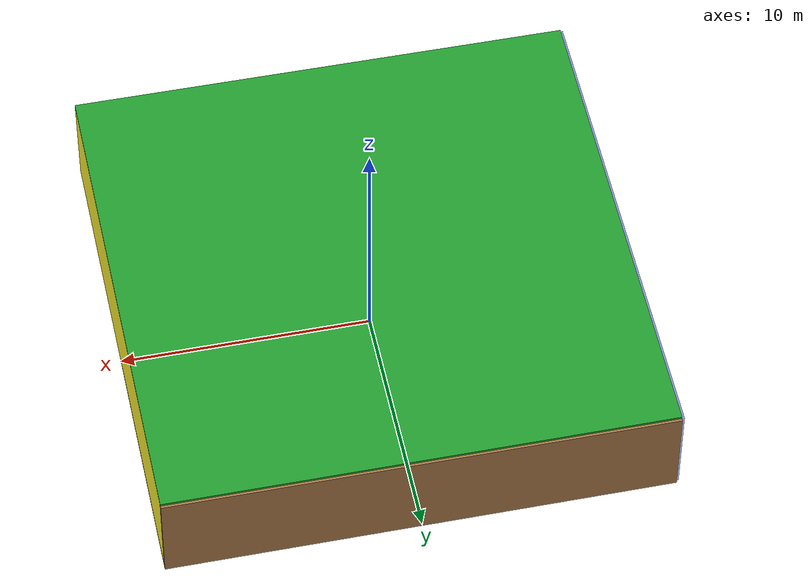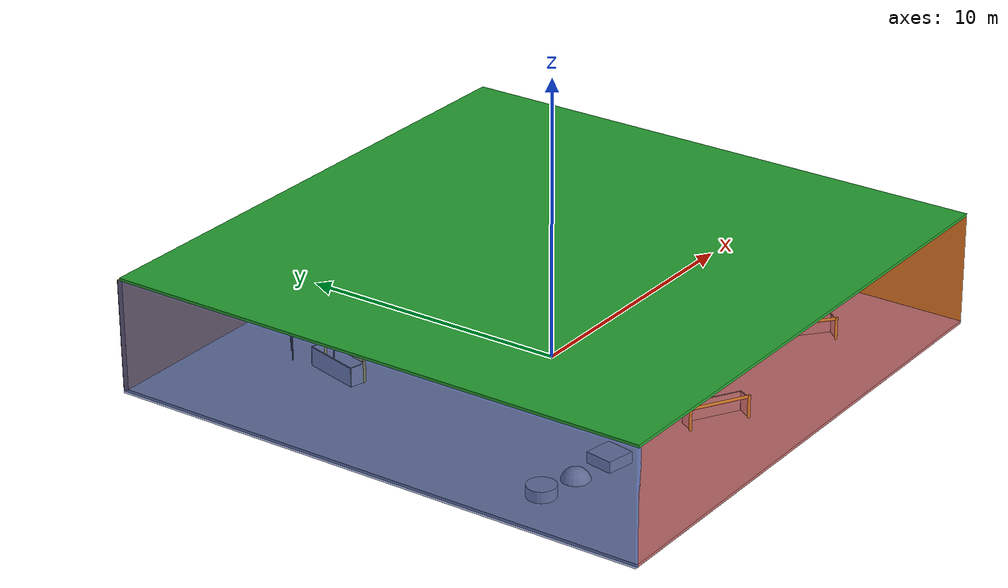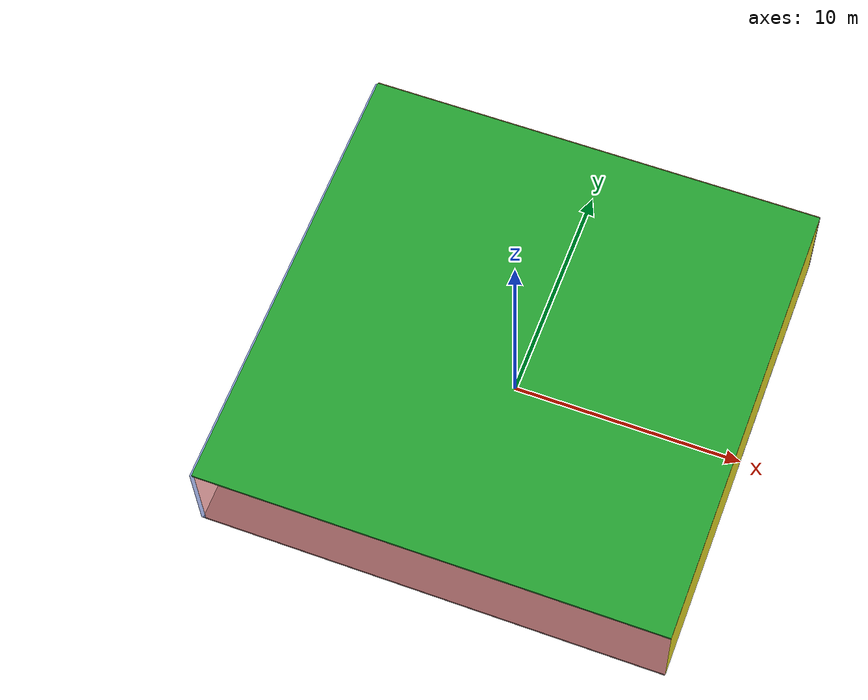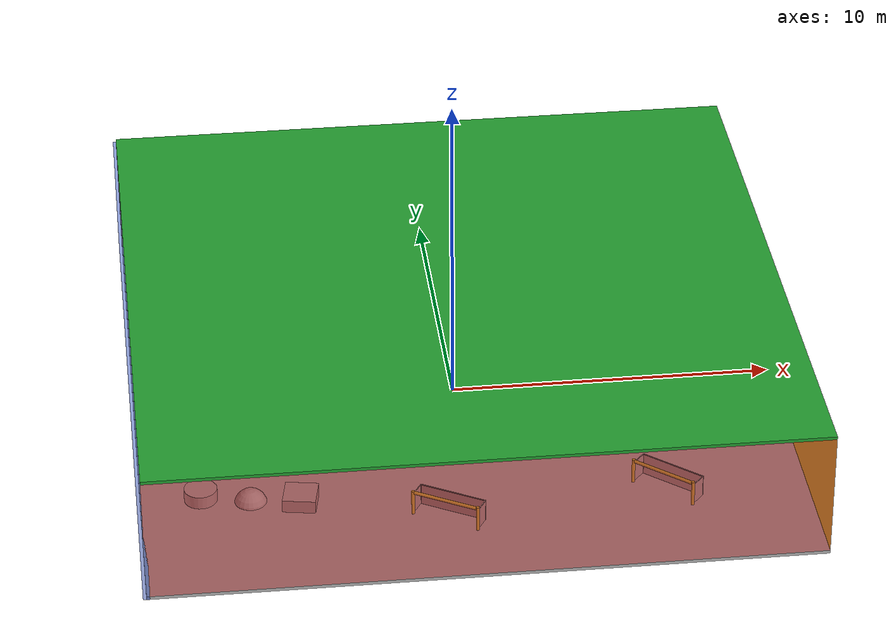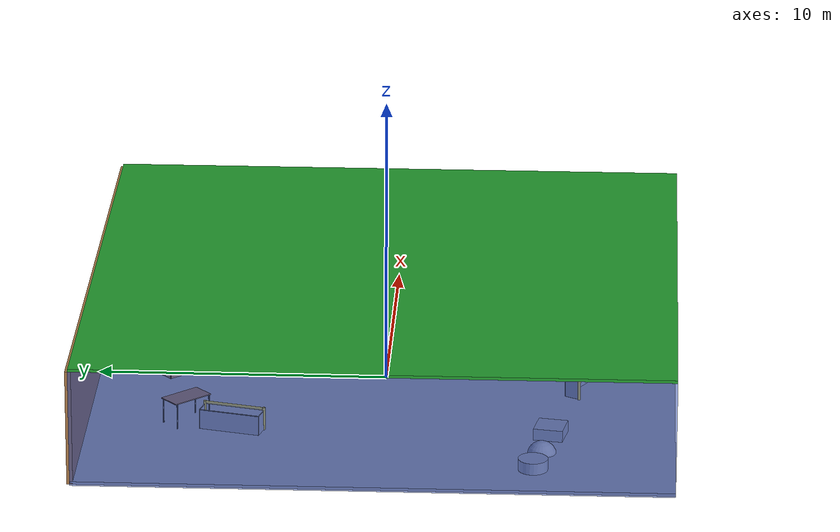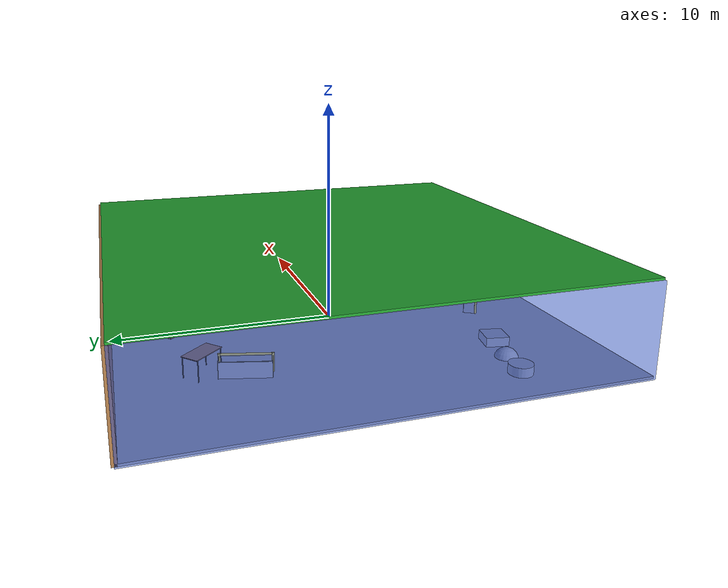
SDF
<sdf version="1.4">
 <world name="default">
  <physics type="ode">
   <max_step_size>0.001</max_step_size>
   <real_time_factor>1</real_time_factor>
   <real_time_update_rate>1000</real_time_update_rate>
   <gravity>0 0 -9.8</gravity>
  </physics>
  <scene><ambient>0.4 0.4 0.4 1</ambient><background>0.7 0.7 0.7 1</background><shadows>1</shadows></scene>
  <model name="Surrounding">
   <static>1</static>
   <link name="Ceiling">
    <collision name="Ceiling_Collision"><geometry><box><size>20 20 0.1</size></box></geometry></collision>
    <visual name="Ceiling_Visual">
     <geometry><box><size>20 20 0.1</size></box></geometry>
     <material>
      <script><uri>file://media/materials/scripts/gazebo.material</uri><name>Gazebo/GreenGlow</name></script>
     </material>
    </visual>
    <pose>0 0 4.05 0 0 0</pose>
   </link>
   <link name="Wall_South">
    <collision name="Wall_South_Collision">
     <geometry><box><size>20 0 4</size></box></geometry>
     <pose>0 0 2 0 -0 0</pose>
    </collision>
    <visual name="Wall_South_Visual">
     <pose>0 0 2 0 -0 0</pose>
     <geometry><box><size>20 0 4</size></box></geometry>
     <material>
      <script><uri>file://media/materials/scripts/gazebo.material</uri><name>Gazebo/RedTransparent</name></script>
     </material>
    </visual>
    <velocity_decay><linear>0</linear><angular>0</angular></velocity_decay>
    <pose>0 -10 0 0 -0 0</pose>
   </link>
   <link name="Wall_East">
    <collision name="Wall_21_Collision">
     <geometry><box><size>20 0 4</size></box></geometry>
     <pose>0 0 2 0 -0 0</pose>
    </collision>
    <visual name="Wall_21_Visual">
     <pose>0 0 2 0 -0 0</pose>
     <geometry><box><size>20 0 4</size></box></geometry>
     <material>
      <script><uri>file://media/materials/scripts/gazebo.material</uri><name>Gazebo/YellowGlow</name></script>
     </material>
    </visual>
    <velocity_decay><linear>0</linear><angular>0</angular></velocity_decay>
    <pose>10 0 0 0 -0 1.5708</pose>
   </link>
   <link name="Wall_North">
    <collision name="Wall_22_Collision">
     <geometry><box><size>20 0.2 4</size></box></geometry>
     <pose>0 0 2 0 -0 0</pose>
    </collision>
    <visual name="Wall_22_Visual">
     <pose>0 0 2 0 -0 0</pose>
     <geometry><box><size>20 0.2 4</size></box></geometry>
     <material>
      <script><uri>file://media/materials/scripts/gazebo.material</uri><name>Gazebo/WoodPallet</name></script>
     </material>
    </visual>
    <velocity_decay><linear>0</linear><angular>0</angular></velocity_decay>
    <pose>0 10 0 0 -0 0</pose>
   </link>
   <link name="Wall_West">
    <collision name="Wall_23_Collision">
     <geometry><box><size>20 0.2 4</size></box></geometry>
     <pose>0 0 2 0 -0 0</pose>
    </collision>
    <visual name="Wall_23_Visual">
     <pose>0 0 2 0 -0 0</pose>
     <geometry><box><size>20 0.2 4</size></box></geometry>
     <material>
      <script><uri>file://media/materials/scripts/gazebo.material</uri><name>Gazebo/BlueTransparent</name></script>
     </material>
    </visual>
    <velocity_decay><linear>0</linear><angular>0</angular></velocity_decay>
    <pose>-10 0 0 0 0 -1.5708</pose>
   </link>
   <link name="Ground_link">
    <collision name="collision">
     <pose>0 0 .05 0 -0 0</pose>
     <geometry><box><size>20 20 0.1</size></box></geometry>
    </collision>
    <visual name="visual">
     <pose>0 0 .05 0 -0 0</pose>
     <geometry><box><size>20 20 0.1</size></box></geometry>
     <material>
      <script><uri>file://media/materials/scripts/gazebo.material</uri><name>Gazebo/CloudySky</name></script>
     </material>
    </visual>
   </link>
   <static>1</static>
  </model>
  <spherical_coordinates>
   <surface_model>EARTH_WGS84</surface_model>
   <latitude_deg>0</latitude_deg>
   <longitude_deg>0</longitude_deg>
   <elevation>0</elevation>
   <heading_deg>0</heading_deg>
  </spherical_coordinates>
  <light name="lightball_0" type="diffuse">
   <diffuse>0.8 0.8 0.8 1</diffuse>
   <specular>0.2 0.2 0.2 1</specular>
   <attenuation>
    <range>100</range>
    <constant>0.7</constant>
    <linear>0.01</linear>
    <quadratic>0.001</quadratic>
   </attenuation>
   <direction>-0.5 0.1 -0.9</direction>
   <pose>0.356109296053 -6.91366480971 0.703805316898 0 0 0</pose>
  </light>
  <light name="lightball_1" type="diffuse">
   <diffuse>0.8 0.8 0.8 1</diffuse>
   <specular>0.2 0.2 0.2 1</specular>
   <attenuation>
    <range>100</range>
    <constant>0.7</constant>
    <linear>0.01</linear>
    <quadratic>0.001</quadratic>
   </attenuation>
   <direction>-0.5 0.1 -0.9</direction>
   <pose>-3.60714688581 6.65449277705 3.21496017347 0 0 0</pose>
  </light>
  <light name="lightball_2" type="diffuse">
   <diffuse>0.8 0.8 0.8 1</diffuse>
   <specular>0.2 0.2 0.2 1</specular>
   <attenuation>
    <range>100</range>
    <constant>0.7</constant>
    <linear>0.01</linear>
    <quadratic>0.001</quadratic>
   </attenuation>
   <direction>-0.5 0.1 -0.9</direction>
   <pose>-6.23087772382 -1.26982757401 2.62976999111 0 0 0</pose>
  </light>
  <light name="lightball_3" type="diffuse">
   <diffuse>0.8 0.8 0.8 1</diffuse>
   <specular>0.2 0.2 0.2 1</specular>
   <attenuation>
    <range>100</range>
    <constant>0.7</constant>
    <linear>0.01</linear>
    <quadratic>0.001</quadratic>
   </attenuation>
   <direction>-0.5 0.1 -0.9</direction>
   <pose>-8.24452565727 7.00280367246 1.97281453646 0 0 0</pose>
  </light>
  <light name="lightball_4" type="diffuse">
   <diffuse>0.8 0.8 0.8 1</diffuse>
   <specular>0.2 0.2 0.2 1</specular>
   <attenuation>
    <range>100</range>
    <constant>0.7</constant>
    <linear>0.01</linear>
    <quadratic>0.001</quadratic>
   </attenuation>
   <direction>-0.5 0.1 -0.9</direction>
   <pose>6.41094202256 0.719501401737 3.63900580162 0 0 0</pose>
  </light>
  <light name="lightball_5" type="diffuse">
   <diffuse>0.8 0.8 0.8 1</diffuse>
   <specular>0.2 0.2 0.2 1</specular>
   <attenuation>
    <range>100</range>
    <constant>0.7</constant>
    <linear>0.01</linear>
    <quadratic>0.001</quadratic>
   </attenuation>
   <direction>-0.5 0.1 -0.9</direction>
   <pose>4.83976643545 -1.57454190787 0.979009251018 0 0 0</pose>
  </light>
  <light name="lightball_6" type="diffuse">
   <diffuse>0.8 0.8 0.8 1</diffuse>
   <specular>0.2 0.2 0.2 1</specular>
   <attenuation>
    <range>100</range>
    <constant>0.7</constant>
    <linear>0.01</linear>
    <quadratic>0.001</quadratic>
   </attenuation>
   <direction>-0.5 0.1 -0.9</direction>
   <pose>7.27244805467 -6.03602611273 1.25622653196 0 0 0</pose>
  </light>
  <light name="lightball_7" type="diffuse">
   <diffuse>0.8 0.8 0.8 1</diffuse>
   <specular>0.2 0.2 0.2 1</specular>
   <attenuation>
    <range>100</range>
    <constant>0.7</constant>
    <linear>0.01</linear>
    <quadratic>0.001</quadratic>
   </attenuation>
   <direction>-0.5 0.1 -0.9</direction>
   <pose>0.417457826085 -3.65545470899 0.70395250306 0 0 0</pose>
  </light>
  <light name="lightball_8" type="diffuse">
   <diffuse>0.8 0.8 0.8 1</diffuse>
   <specular>0.2 0.2 0.2 1</specular>
   <attenuation>
    <range>100</range>
    <constant>0.7</constant>
    <linear>0.01</linear>
    <quadratic>0.001</quadratic>
   </attenuation>
   <direction>-0.5 0.1 -0.9</direction>
   <pose>-1.2152143709 -3.06609102083 3.41015951877 0 0 0</pose>
  </light>
  <light name="lightball_9" type="diffuse">
   <diffuse>0.8 0.8 0.8 1</diffuse>
   <specular>0.2 0.2 0.2 1</specular>
   <attenuation>
    <range>100</range>
    <constant>0.7</constant>
    <linear>0.01</linear>
    <quadratic>0.001</quadratic>
   </attenuation>
   <direction>-0.5 0.1 -0.9</direction>
   <pose>4.80928050401 5.89877229801 1.31614242122 0 0 0</pose>
  </light>
  <include>
   <uri>model://textured_shapes</uri>
   <pose>-6.70419239069 -5.53085637178 0 0 0 1.39333505325</pose>
  </include>
  <include>
   <uri>model://robocup_3Dsim_goal</uri>
   <pose>-4.91278080694 4.91318455695 0 0 0 2.88872980431</pose>
  </include>
  <include><uri>model://table</uri><pose>-4.53559143307 6.57490370744 0 0 0 2.31175653778</pose></include>
  <include>
   <uri>model://robocup_3Dsim_goal</uri>
   <pose>-1.03778506482 -7.23631424058 0 0 0 1.04110611391</pose>
  </include>
  <include><uri>model://cabinet</uri><pose>-0.428942321099 7.41068650335 0 0 0 2.29755260633</pose></include>
  <include>
   <uri>model://robocup_3Dsim_goal</uri>
   <pose>5.59736586203 -6.50403890781 0 0 0 0.851231521505</pose>
  </include>
  <include>
   <uri>model://construction_cone</uri>
   <pose>3.41232937458 6.9524499684 0 0 0 2.03443081624</pose>
  </include>
 </world>
</sdf>

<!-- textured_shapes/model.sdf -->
<sdf version="1.6">
  <model name="textured_shapes">
    <pose>0 0 0.5 0 0 0</pose>
    <link name="box">
      <pose>0 -1.5 0 0 0 0</pose>
      <collision name="collision">
        <geometry>
          <box>
            <size>1 1 1</size>
          </box>
        </geometry>
      </collision>
      <visual name="visual">
        <geometry>
          <box>
            <size>1 1 1</size>
          </box>
        </geometry>
        <material>
          <script>
            <uri>model://../model_source/models/textured_shapes/materials/scripts</uri>
            <uri>model://../model_source/models/textured_shapes/materials/textures</uri>
            <name>TexturedShape/Squares</name>
          </script>
        </material>
      </visual>
    </link>
    <link name="sphere">
      <collision name="collision">
        <geometry>
          <sphere>
            <radius>0.5</radius>
          </sphere>
        </geometry>
      </collision>
      <visual name="visual">
        <geometry>
          <sphere>
            <radius>0.5</radius>
          </sphere>
        </geometry>
        <material>
          <script>
            <uri>model://../model_source/models/textured_shapes/materials/scripts</uri>
            <uri>model://../model_source/models/textured_shapes/materials/textures</uri>
            <name>TexturedShape/Squares</name>
          </script>
        </material>
      </visual>
    </link>
    <link name="cylinder">
      <pose>0 1.5 0 0 0 0</pose>
      <collision name="collision">
        <geometry>
          <cylinder>
            <radius>0.5</radius>
            <length>1</length>
          </cylinder>
        </geometry>
      </collision>
      <visual name="visual">
        <geometry>
          <cylinder>
            <radius>0.5</radius>
            <length>1</length>
          </cylinder>
        </geometry>
        <material>
          <script>
            <uri>model://../model_source/models/textured_shapes/materials/scripts</uri>
            <uri>model://../model_source/models/textured_shapes/materials/textures</uri>
            <name>TexturedShape/Squares</name>
          </script>
        </material>
      </visual>
    </link>
  </model>
</sdf>

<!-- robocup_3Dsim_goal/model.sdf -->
<sdf version="1.5">
  <model name="robocup_3d_goal">
    <static>true</static>
    <link name="left_post">
      <pose>0 1.05 0.45 0 0 0</pose>
      <collision name="collision">
        <geometry>
          <cylinder>
            <radius>0.05</radius>
            <length>0.9</length>
          </cylinder>
        </geometry>
      </collision>
      <visual name="visual">
        <geometry>
          <cylinder>
            <radius>0.05</radius>
            <length>0.9</length>
          </cylinder>
        </geometry>
        <material>
          <script>
            <uri>file://media/materials/scripts/gazebo.material</uri>
            <name>Gazebo/ZincYellow</name>
          </script>
        </material>
      </visual>
    </link>
    <link name="left_support_horiz_lower">
      <pose>0.30 1.05 0.01 0 0 0</pose>
      <collision name="collision">
        <geometry>
          <box>
            <size>0.50 0.02 0.02</size>
          </box>
        </geometry>
      </collision>
      <visual name="visual">
        <geometry>
          <box>
            <size>0.50 0.02 0.02</size>
          </box>
        </geometry>
        <material>
          <script>
            <uri>file://media/materials/scripts/gazebo.material</uri>
            <name>Gazebo/White</name>
          </script>
        </material>
      </visual>
    </link>
    <link name="left_support_horiz_upper">
      <pose>0.30 1.05 0.79 0 0 0</pose>
      <collision name="collision">
        <geometry>
          <box>
            <size>0.50 0.02 0.02</size>
          </box>
        </geometry>
      </collision>
      <visual name="visual">
        <geometry>
          <box>
            <size>0.50 0.02 0.02</size>
          </box>
        </geometry>
        <material>
          <script>
            <uri>file://media/materials/scripts/gazebo.material</uri>
            <name>Gazebo/White</name>
          </script>
        </material>
      </visual>
    </link>
    <link name="left_support_vertical">
      <pose>0.56 1.05 0.4 0 1.5708 0</pose>
      <collision name="collision">
        <geometry>
          <box>
            <size>0.80 0.02 0.02</size>
          </box>
        </geometry>
      </collision>
      <visual name="visual">
        <geometry>
          <box>
            <size>0.80 0.02 0.02</size>
          </box>
        </geometry>
        <material>
          <script>
            <uri>file://media/materials/scripts/gazebo.material</uri>
            <name>Gazebo/White</name>
          </script>
        </material>
      </visual>
    </link>
    <link name="right_support_horiz_lower">
      <pose>0.30 -1.05 0.01 0 0 0</pose>
      <collision name="collision">
        <geometry>
          <box>
            <size>0.50 0.02 0.02</size>
          </box>
        </geometry>
      </collision>
      <visual name="visual">
        <geometry>
          <box>
            <size>0.50 0.02 0.02</size>
          </box>
        </geometry>
        <material>
          <script>
            <uri>file://media/materials/scripts/gazebo.material</uri>
            <name>Gazebo/White</name>
          </script>
        </material>
      </visual>
    </link>
    <link name="right_support_horiz_upper">
      <pose>0.30 -1.05 0.79 0 0 0</pose>
      <collision name="collision">
        <geometry>
          <box>
            <size>0.50 0.02 0.02</size>
          </box>
        </geometry>
      </collision>
      <visual name="visual">
        <geometry>
          <box>
            <size>0.50 0.02 0.02</size>
          </box>
        </geometry>
        <material>
          <script>
            <uri>file://media/materials/scripts/gazebo.material</uri>
            <name>Gazebo/White</name>
          </script>
        </material>
      </visual>
    </link>
    <link name="right_support_vertical">
      <pose>0.56 -1.05 0.4 0 1.5708 0</pose>
      <collision name="collision">
        <geometry>
          <box>
            <size>0.80 0.02 0.02</size>
          </box>
        </geometry>
      </collision>
      <visual name="visual">
        <geometry>
          <box>
            <size>0.80 0.02 0.02</size>
          </box>
        </geometry>
        <material>
          <script>
            <uri>file://media/materials/scripts/gazebo.material</uri>
            <name>Gazebo/White</name>
          </script>
        </material>
      </visual>
    </link>
    <link name="center_support_horiz_lower">
      <pose>0.56 0 0.01 0 1.5708 0</pose>
      <collision name="collision">
        <geometry>
          <box>
            <size>0.02 2.08 0.02</size>
          </box>
        </geometry>
      </collision>
      <visual name="visual">
        <geometry>
          <box>
            <size>0.02 2.08 0.02</size>
          </box>
        </geometry>
        <material>
          <script>
            <uri>file://media/materials/scripts/gazebo.material</uri>
            <name>Gazebo/White</name>
          </script>
        </material>
      </visual>
    </link>
    <link name="center_support_horiz_upper">
      <pose>0.56 0 0.79 0 1.5708 0</pose>
      <collision name="collision">
        <geometry>
          <box>
            <size>0.02 2.08 0.02</size>
          </box>
        </geometry>
      </collision>
      <visual name="visual">
        <geometry>
          <box>
            <size>0.02 2.08 0.02</size>
          </box>
        </geometry>
        <material>
          <script>
            <uri>file://media/materials/scripts/gazebo.material</uri>
            <name>Gazebo/White</name>
          </script>
        </material>
      </visual>
    </link>
    <link name="right_post">
      <pose>0 -1.05 0.45 0 0 0</pose>
      <collision name="collision">
        <geometry>
          <cylinder>
            <radius>0.05</radius>
            <length>0.9</length>
          </cylinder>
        </geometry>
      </collision>
      <visual name="visual">
        <geometry>
          <cylinder>
            <radius>0.05</radius>
            <length>0.9</length>
          </cylinder>
        </geometry>
        <material>
          <script>
            <uri>file://media/materials/scripts/gazebo.material</uri>
            <name>Gazebo/ZincYellow</name>
          </script>
        </material>
      </visual>
    </link>
    <link name="crossbar">
      <pose>0 0 0.85 1.57 1.57 0</pose>
      <collision name="collision">
        <geometry>
          <cylinder>
            <radius>0.05</radius>
            <length>2.0</length>
          </cylinder>
        </geometry>
      </collision>
      <visual name="visual">
        <geometry>
          <cylinder>
            <radius>0.05</radius>
            <length>2.0</length>
          </cylinder>
        </geometry>
        <material>
          <script>
            <uri>file://media/materials/scripts/gazebo.material</uri>
            <name>Gazebo/ZincYellow</name>
          </script>
        </material>
      </visual>
    </link>
    <link name="center_net">
      <pose>0.56 0 0.40 0 0 0</pose>
      <collision name="collision">
        <geometry>
          <box>
            <size>0.01 2.1 0.80</size>
          </box>
        </geometry>
      </collision>
      <visual name="visual">
        <geometry>
          <box>
            <size>0.01 2.1 0.80</size>
          </box>
        </geometry>
        <material>
          <script>
            <uri>model://../model_source/models/robocup09_spl_field/materials/scripts/</uri>
            <uri>model://../model_source/models/robocup09_spl_field/materials/textures/</uri>
            <name>RoboCup/Net</name>
          </script>
        </material>
      </visual>
    </link>
    <link name="left_net">
      <pose>0.30 1.05 0.40 0 0 0</pose>
      <collision name="collision">
        <geometry>
          <box>
            <size>0.50 0.01 0.76</size>
          </box>
        </geometry>
      </collision>
      <visual name="visual">
        <geometry>
          <box>
            <size>0.50 0.01 0.76</size>
          </box>
        </geometry>
        <material>
          <script>
            <uri>model://../model_source/models/robocup09_spl_field/materials/scripts/</uri>
            <uri>model://../model_source/models/robocup09_spl_field/materials/textures/</uri>
            <name>RoboCup/Net</name>
          </script>
        </material>
      </visual>
    </link>
    <link name="right_net">
      <pose>0.30 -1.05 0.40 0 0 0</pose>
      <collision name="collision">
        <geometry>
          <box>
            <size>0.50 0.01 0.76</size>
          </box>
        </geometry>
      </collision>
      <visual name="visual">
        <geometry>
          <box>
            <size>0.50 0.01 0.76</size>
          </box>
        </geometry>
        <material>
          <script>
            <uri>model://../model_source/models/robocup09_spl_field/materials/scripts/</uri>
            <uri>model://../model_source/models/robocup09_spl_field/materials/textures/</uri>
            <name>RoboCup/Net</name>
          </script>
        </material>
      </visual>
    </link>
  </model>
</sdf>

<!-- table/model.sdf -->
<sdf version="1.5">
  <model name="table">
    <static>true</static>
    <link name="link">
      <collision name="surface">
        <pose>0 0 1.0 0 0 0</pose>
        <geometry>
          <box>
            <size>1.5 0.8 0.03</size>
          </box>
        </geometry>
        <surface>
          <friction>
            <ode>
              <mu>0.6</mu>
              <mu2>0.6</mu2>
            </ode>
          </friction>
        </surface>
      </collision>
      <visual name="visual1">
        <pose>0 0 1.0 0 0 0</pose>
        <geometry>
          <box>
            <size>1.5 0.8 0.03</size>
          </box>
        </geometry>
        <material>
          <script>
            <uri>model://media/materials/scripts/gazebo.material</uri>
            <name>Gazebo/Wood</name>
          </script>
        </material>
      </visual>
      <collision name="front_left_leg">
        <pose>0.68 0.38 0.5 0 0 0</pose>
        <geometry>
          <cylinder>
            <radius>0.02</radius>
            <length>1.0</length>
          </cylinder>
        </geometry>
      </collision>
      <visual name="front_left_leg">
        <pose>0.68 0.38 0.5 0 0 0</pose>
        <geometry>
          <cylinder>
            <radius>0.02</radius>
            <length>1.0</length>
          </cylinder>
        </geometry>
        <material>
          <script>
            <uri>model://media/materials/scripts/gazebo.material</uri>
            <name>Gazebo/Grey</name>
          </script>
        </material>
      </visual>
      <collision name="front_right_leg">
        <pose>0.68 -0.38 0.5 0 0 0</pose>
        <geometry>
          <cylinder>
            <radius>0.02</radius>
            <length>1.0</length>
          </cylinder>
        </geometry>
      </collision>
      <visual name="front_right_leg">
        <pose>0.68 -0.38 0.5 0 0 0</pose>
        <geometry>
          <cylinder>
            <radius>0.02</radius>
            <length>1.0</length>
          </cylinder>
        </geometry>
        <material>
          <script>
            <uri>model://media/materials/scripts/gazebo.material</uri>
            <name>Gazebo/Grey</name>
          </script>
        </material>
      </visual>
      <collision name="back_right_leg">
        <pose>-0.68 -0.38 0.5 0 0 0</pose>
        <geometry>
          <cylinder>
            <radius>0.02</radius>
            <length>1.0</length>
          </cylinder>
        </geometry>
      </collision>
      <visual name="back_right_leg">
        <pose>-0.68 -0.38 0.5 0 0 0</pose>
        <geometry>
          <cylinder>
            <radius>0.02</radius>
            <length>1.0</length>
          </cylinder>
        </geometry>
        <material>
          <script>
            <uri>model://media/materials/scripts/gazebo.material</uri>
            <name>Gazebo/Grey</name>
          </script>
        </material>
      </visual>
      <collision name="back_left_leg">
        <pose>-0.68 0.38 0.5 0 0 0</pose>
        <geometry>
          <cylinder>
            <radius>0.02</radius>
            <length>1.0</length>
          </cylinder>
        </geometry>
      </collision>
      <visual name="back_left_leg">
        <pose>-0.68 0.38 0.5 0 0 0</pose>
        <geometry>
          <cylinder>
            <radius>0.02</radius>
            <length>1.0</length>
          </cylinder>
        </geometry>
        <material>
          <script>
            <uri>model://media/materials/scripts/gazebo.material</uri>
            <name>Gazebo/Grey</name>
          </script>
        </material>
      </visual>
    </link>
  </model>
</sdf>

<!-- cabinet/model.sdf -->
<sdf version="1.5">
  <model name="cabinet">
    <static>true</static>
    <link name="cabinet_bottom_plate">
      <inertial>
        <pose>0 0 -1 0 0 0</pose>
        <inertia>
          <ixx>2.050000</ixx>
          <ixy>0</ixy>
          <ixz>0</ixz>
          <iyy>2.050000</iyy>
          <iyz>0</iyz>
          <izz>2.050000</izz>
        </inertia>
        <mass>25.000000</mass>
      </inertial>
      <collision name="cabinet_bottom_plate_geom">
        <pose>0 0 0.010000 0 0 0</pose>
        <geometry>
          <box>
            <size>0.450000 0.450000 0.020000</size>
          </box>
        </geometry>
      </collision>
      <visual name="cabinet_bottom_plate_geom_visual">
        <pose>0 0 0.010000 0 0 0</pose>
        <geometry>
          <box>
            <size>0.450000 0.450000 0.020000</size>
          </box>
        </geometry>
        <material>
          <script>
            <uri>model://media/materials/scripts/gazebo.material</uri>
            <name>Gazebo/Wood</name>
          </script>
        </material>
      </visual>
      <collision name="cabinet_bottom_plate_geom_cabinet_back_plate">
        <pose>0.235000 0 0.510000 0 0 0</pose>
        <geometry>
          <box>
            <size>0.020000 0.450000 1.020000</size>
          </box>
        </geometry>
      </collision>
      <visual name="cabinet_bottom_plate_geom_cabinet_back_plate_visual">
        <pose>0.235000 0 0.510000 0 0 0</pose>
        <geometry>
          <box>
            <size>0.020000 0.450000 1.020000</size>
          </box>
        </geometry>
        <material>
          <script>
            <uri>model://media/materials/scripts/gazebo.material</uri>
            <name>Gazebo/Wood</name>
          </script>
        </material>
      </visual>
      <collision name="cabinet_bottom_plate_geom_cabinet_left_plate">
        <pose>0 0.235000 0.510000 0 0 0</pose>
        <geometry>
          <box>
            <size>0.450000 0.020000 1.020000</size>
          </box>
        </geometry>
      </collision>
      <visual name="cabinet_bottom_plate_geom_cabinet_left_plate_visual">
        <pose>0 0.235000 0.510000 0 0 0</pose>
        <geometry>
          <box>
            <size>0.450000 0.020000 1.020000</size>
          </box>
        </geometry>
        <material>
          <script>
            <uri>model://media/materials/scripts/gazebo.material</uri>
            <name>Gazebo/Wood</name>
          </script>
        </material>
      </visual>
      <collision name="cabinet_bottom_plate_geom_cabinet_middle_plate">
        <pose>0 0 0.510000 0 0 0</pose>
        <geometry>
          <box>
            <size>0.450000 0.450000 0.020000</size>
          </box>
        </geometry>
      </collision>
      <visual name="cabinet_bottom_plate_geom_cabinet_middle_plate_visual">
        <pose>0 0 0.510000 0 0 0</pose>
        <geometry>
          <box>
            <size>0.450000 0.450000 0.020000</size>
          </box>
        </geometry>
        <material>
          <script>
            <uri>model://media/materials/scripts/gazebo.material</uri>
            <name>Gazebo/Wood</name>
          </script>
        </material>
      </visual>
      <collision name="cabinet_bottom_plate_geom_cabinet_right_plate">
        <pose>0 -0.235000 0.510000 0 0 0</pose>
        <geometry>
          <box>
            <size>0.450000 0.020000 1.020000</size>
          </box>
        </geometry>
      </collision>
      <visual name="cabinet_bottom_plate_geom_cabinet_right_plate_visual">
        <pose>0 -0.235000 0.510000 0 0 0</pose>
        <geometry>
          <box>
            <size>0.450000 0.020000 1.020000</size>
          </box>
        </geometry>
        <material>
          <script>
            <uri>model://media/materials/scripts/gazebo.material</uri>
            <name>Gazebo/Wood</name>
          </script>
        </material>
      </visual>
      <collision name="cabinet_bottom_plate_geom_cabinet_top_plate">
        <pose>0 0 1.010000 0 0 0</pose>
        <geometry>
          <box>
            <size>0.450000 0.450000 0.020000</size>
          </box>
        </geometry>
      </collision>
      <visual name="cabinet_bottom_plate_geom_cabinet_top_plate_visual">
        <pose>0 0 1.010000 0 0 0</pose>
        <geometry>
          <box>
            <size>0.450000 0.450000 0.020000</size>
          </box>
        </geometry>
        <material>
          <script>
            <uri>model://media/materials/scripts/gazebo.material</uri>
            <name>Gazebo/Wood</name>
          </script>
        </material>
      </visual>
    </link>
  </model>
</sdf>

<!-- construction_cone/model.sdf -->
<sdf version="1.5">
  <model name="Construction Cone">
    <link name="link">
      <collision name="collision">
        <geometry>
          <mesh>
            <scale>10 10 10</scale>
            <uri>file://isr-testbed/construction_cone/meshes/construction_cone.dae</uri>
          </mesh>
        </geometry>
      </collision>
      <visual name="visual">
        <geometry>
          <mesh>
            <scale>10 10 10</scale>
            <uri>file://isr-testbed/construction_cone/meshes/construction_cone.dae</uri>
          </mesh>
        </geometry>
      </visual>
    </link>
  </model>
</sdf>
